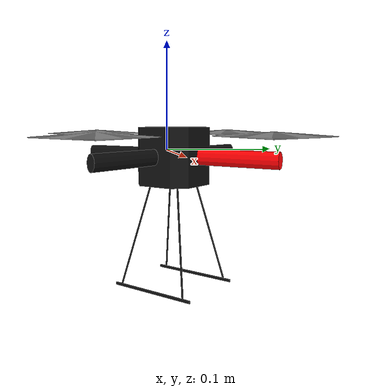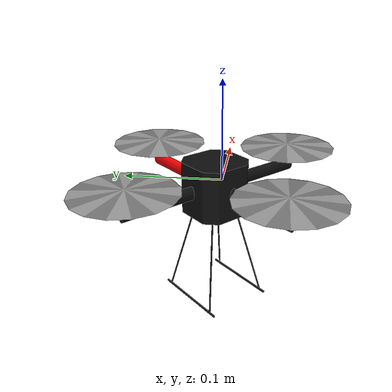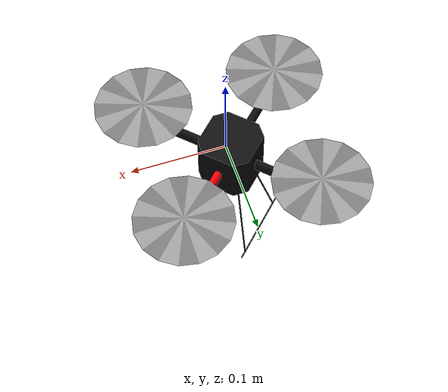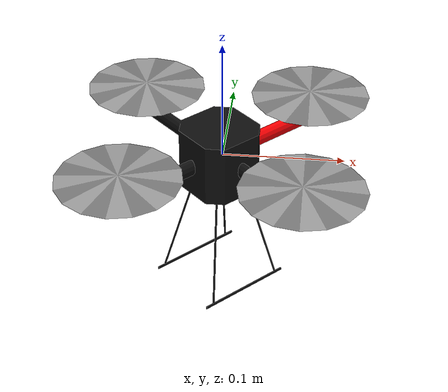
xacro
<?xml version="1.0"?>

<robot
  name="quadrotor"
  xmlns:xacro="http://www.ros.org/wiki/xacro"
>

    <!-- Included URDF Files -->
    <xacro:include filename="$(find panther_gazebo)/urdf/quadrotor_base.urdf.xacro" />

    <!-- Instantiate quadrotor_base_macro once (has no parameters atm) -->
    <xacro:quadrotor_base_macro />

      <!-- Sonar height sensor -->

</robot>

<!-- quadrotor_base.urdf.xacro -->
<robot xmlns:xacro="http://www.ros.org/wiki/xacro">

  <xacro:property name="pi" value="3.1415926535897931" />

  <!-- Main quadrotor link -->
  <xacro:macro name="quadrotor_base_macro">
    <link name="base_link">
      <inertial>
        <mass value="1.477" />
        <origin xyz="0 0 0" />
        <inertia ixx="0.01152" ixy="0.0" ixz="0.0" iyy="0.01152" iyz="0.0" izz="0.0218" />
      </inertial>

      <visual>
        <origin xyz="0 0 0" rpy="0 0 0" />
        <geometry>
          <mesh filename="package://panther_gazebo/meshes/quadrotor/quadrotor_base_2.dae" scale="0.76 0.76 1"/>
        </geometry>
      </visual>
    </link>

   </xacro:macro>
</robot>
